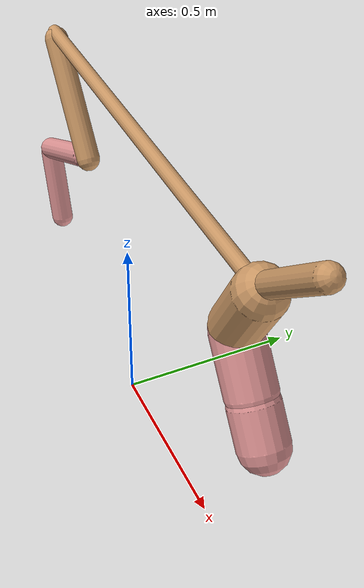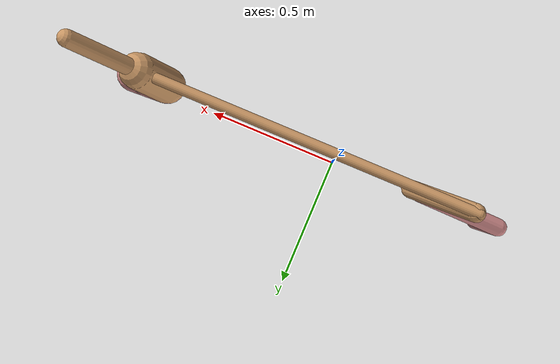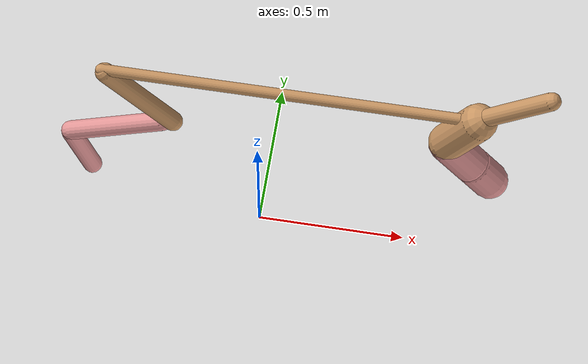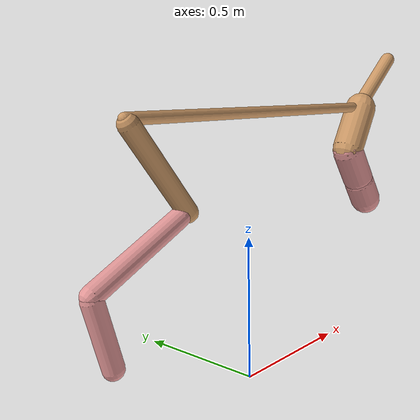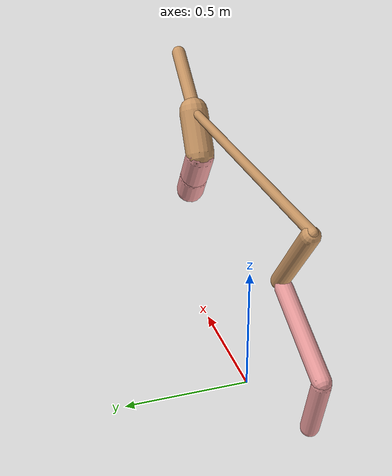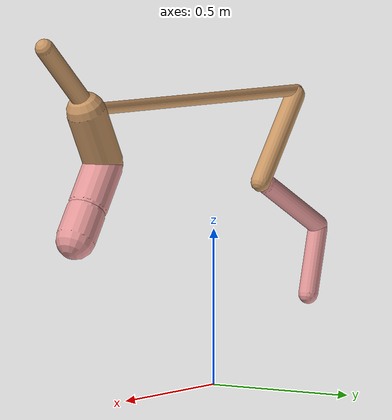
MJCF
<mujoco model="cheetah">
  <compiler angle="radian" coordinate="local" inertiafromgeom="true" settotalmass="14" />
  <default>
    <joint armature=".1" damping=".01" limited="true" solimplimit="0 .8 .03" solreflimit=".02 1" stiffness="8" />
    <geom conaffinity="0" condim="3" contype="1" friction="0.8 .1 .1" rgba="0.8 0.6 .4 1" solimp="0.0 0.8 0.01" solref="0.02 1" />
    <motor ctrllimited="true" ctrlrange="-1 1" />
  </default>
  <size nstack="300000" nuser_geom="1" />
  <option gravity="0 0 -9.81" timestep="0.01" />
  <worldbody>
    <body name="torso" pos="0.0 0.0 0.918559631300316">
      <joint armature="0" axis="1 0 0" damping="0" limited="false" name="ignorex" pos="0 0 0" stiffness="0" type="slide" />
      <joint armature="0" axis="0 0 1" damping="0" limited="false" name="ignorez" pos="0 0 0" stiffness="0" type="slide" />
      <joint armature="0" axis="0 1 0" damping="0" limited="false" name="ignorey" pos="0 0 0" stiffness="0" type="hinge" />
      <geom fromto="-0.5 0.0 0.0 0.7172537074115412 0.0 0.0" name="torso" size="0.01878316947645127" type="capsule" />
      <geom axisangle="0 1 0 .87" name="head" pos="0.8172537074115412 0.0 0.1" size="0.029457781120809014 0.15" type="capsule" />

      <body name="bthigh" pos="-.5 0 0">
        <joint axis="0 1 0" damping="6" name="bthigh" pos="0 0 0" range="-.52 1.05" stiffness="240" type="hinge" />
        <geom axisangle="0 1 0 -3.8" name="bthigh" pos="0.11637494327814905 0.0 -0.15128742626159375" size="0.0322 0.17185690384622526" type="capsule" />
        <body name="bshin" pos="0.1927498865562981 0.0 -0.2925748525231875">
          <joint axis="0 1 0" damping="4.5" name="bshin" pos="0 0 0" range="-.785 .785" stiffness="180" type="hinge" />
          <geom axisangle="0 1 0 -2.03" name="bshin" pos="-0.16484987420634564 0.0 -0.08242493710317282" rgba="0.9 0.6 0.6 1" size="0.0322 0.17778300397885374" type="capsule" />
          <body name="bfoot" pos="-0.3296997484126913 0.0 -0.16484987420634564">
            <joint axis="0 1 0" damping="3" name="bfoot" pos="0 0 0" range="-.4 .785" stiffness="120" type="hinge" />
            <geom axisangle="0 1 0 -.27" name="bfoot" pos="0.03514432953221343 0.0 -0.11363333215415675" rgba="0.9 0.6 0.6 1" size="0.0322 0.11141068249341501" type="capsule" />
            <inertial mass="10" />
          </body>
        </body>
      </body>
      <body name="fthigh" pos="0.7172537074115413 0.0 0.0">
        <joint axis="0 1 0" damping="4.5" name="fthigh" pos="0 0 0" range="-1.5 0.8" stiffness="180" type="hinge" />
        <geom axisangle="0 1 0 .52" name="fthigh" pos="-0.04989554608158897 0.0 -0.0855352218541525" size="0.06166612600469091 0.0931" type="capsule" />
        <body name="fshin" pos="-0.09979109216317794 0.0 -0.171070443708305">
          <joint axis="0 1 0" damping="3" name="fshin" pos="0 0 0" range="-1.2 1.1" stiffness="120" type="hinge" />
          <geom axisangle="0 1 0 -.6" name="fshin" pos="0.046381400387749405 0.0 -0.06422040053688378" rgba="0.9 0.6 0.6 1" size="0.06166612600469091 0.07419999999999999" type="capsule" />
          <body name="ffoot" pos="0.09276280077549881 0.0 -0.12844080107376757">
            <joint axis="0 1 0" damping="1.5" name="ffoot" pos="0 0 0" range="-3.1 -0.3" stiffness="60" type="hinge" />
            <geom axisangle="0 1 0 -.6" name="ffoot" pos="0.033644090582416526 0.0 -0.05233525201709238" rgba="0.9 0.6 0.6 1" size="0.06166612600469091 0.049" type="capsule" />
            <inertial mass="10" />
          </body>
        </body>
      </body>
    </body>
  </worldbody>
  <actuator>
    <motor gear="120" joint="bthigh" name="bthigh" />
    <motor gear="90" joint="bshin" name="bshin" />
    <motor gear="60" joint="bfoot" name="bfoot" />
    <motor gear="120" joint="fthigh" name="fthigh" />
    <motor gear="60" joint="fshin" name="fshin" />
    <motor gear="30" joint="ffoot" name="ffoot" />
  </actuator>
</mujoco>
